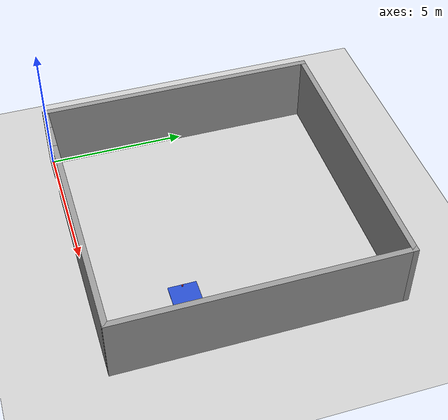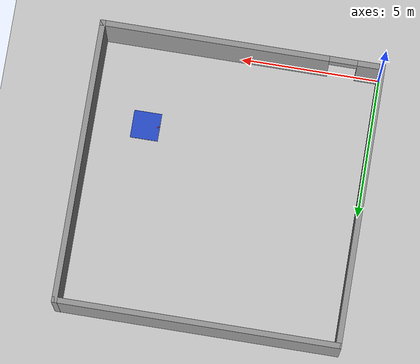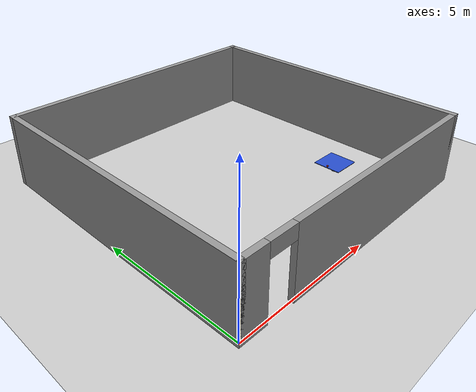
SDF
<sdf version="1.4">
 <world name="default">
  <model name="ground_plane">
   <static>1</static>
   <link name="link">
    <collision name="collision">
     <geometry><plane><normal>0 0 1</normal><size>100 100</size></plane></geometry>
     <surface><friction><ode><mu>100</mu><mu2>50</mu2></ode></friction></surface>
    </collision>
    <visual name="visual">
     <cast_shadows>0</cast_shadows>
     <geometry><plane><normal>0 0 1</normal><size>100 100</size></plane></geometry>
     <material>
      <script><uri>file://media/materials/scripts/gazebo.material</uri><name>Gazebo/Grey</name></script>
     </material>
    </visual>
    <velocity_decay><linear>0</linear><angular>0</angular></velocity_decay>
   </link>
  </model>
  <light name="sun" type="directional">
   <pose>0 0 10 0 -0 0</pose>
   <diffuse>0.8 0.8 0.8 1</diffuse>
   <specular>0.2 0.2 0.2 1</specular>
   <attenuation>
    <range>1000</range>
    <constant>0.9</constant>
    <linear>0.01</linear>
    <quadratic>0.001</quadratic>
   </attenuation>
   <direction>-0.5 0.1 -0.9</direction>
  </light>
  <physics type="ode">
   <max_step_size>0.001</max_step_size>
   <real_time_factor>1</real_time_factor>
   <real_time_update_rate>1000</real_time_update_rate>
   <gravity>0 0 -9.8</gravity>
  </physics>
  <scene><ambient>0.4 0.4 0.4 1</ambient><background>0.7 0.7 0.7 1</background><shadows>1</shadows></scene>
  <spherical_coordinates>
   <surface_model>EARTH_WGS84</surface_model>
   <latitude_deg>0</latitude_deg>
   <longitude_deg>0</longitude_deg>
   <elevation>0</elevation>
   <heading_deg>0</heading_deg>
  </spherical_coordinates>
  <model name="BuildingDefaultName">
   <link name="Wall_0">
    <pose>5 0 0 0 -0 0</pose>
    <visual name="Wall_0_Visual_0">
     <pose>-4.60802 0 1.25 0 -0 0</pose>
     <geometry><box><size>0.983952 0.2 2.5</size></box></geometry>
     <material>
      <script><uri>file://media/materials/scripts/gazebo.material</uri><name>Gazebo/Grey</name></script>
     </material>
    </visual>
    <collision name="Wall_0_Collision_0">
     <geometry><box><size>0.983952 0.2 2.5</size></box></geometry>
     <pose>-4.60802 0 1.25 0 -0 0</pose>
    </collision>
    <visual name="Wall_0_Visual_1">
     <pose>0.991976 0 1.25 0 -0 0</pose>
     <geometry><box><size>8.21605 0.2 2.5</size></box></geometry>
     <material>
      <script><uri>file://media/materials/scripts/gazebo.material</uri><name>Gazebo/Grey</name></script>
     </material>
    </visual>
    <collision name="Wall_0_Collision_1">
     <geometry><box><size>8.21605 0.2 2.5</size></box></geometry>
     <pose>0.991976 0 1.25 0 -0 0</pose>
    </collision>
    <visual name="Wall_0_Visual_2">
     <pose>-3.61605 0 2.25 0 -0 0</pose>
     <geometry><box><size>1 0.2 0.5</size></box></geometry>
     <material>
      <script><uri>file://media/materials/scripts/gazebo.material</uri><name>Gazebo/Grey</name></script>
     </material>
    </visual>
    <collision name="Wall_0_Collision_2">
     <geometry><box><size>1 0.2 0.5</size></box></geometry>
     <pose>-3.61605 0 2.25 0 -0 0</pose>
    </collision>
    <velocity_decay><linear>0</linear><angular>0</angular></velocity_decay>
   </link>
   <link name="Wall_1">
    <collision name="Wall_1_Collision">
     <geometry><box><size>10.2 0.2 2.5</size></box></geometry>
     <pose>0 0 1.25 0 -0 0</pose>
    </collision>
    <visual name="Wall_1_Visual">
     <pose>0 0 1.25 0 -0 0</pose>
     <geometry><box><size>10.2 0.2 2.5</size></box></geometry>
     <material>
      <script><uri>file://media/materials/scripts/gazebo.material</uri><name>Gazebo/Grey</name></script>
     </material>
    </visual>
    <velocity_decay><linear>0</linear><angular>0</angular></velocity_decay>
    <pose>10 5 0 0 -0 1.5708</pose>
   </link>
   <link name="Wall_2">
    <collision name="Wall_2_Collision">
     <geometry><box><size>10.2 0.2 2.5</size></box></geometry>
     <pose>0 0 1.25 0 -0 0</pose>
    </collision>
    <visual name="Wall_2_Visual">
     <pose>0 0 1.25 0 -0 0</pose>
     <geometry><box><size>10.2 0.2 2.5</size></box></geometry>
     <material>
      <script><uri>file://media/materials/scripts/gazebo.material</uri><name>Gazebo/Grey</name></script>
     </material>
    </visual>
    <velocity_decay><linear>0</linear><angular>0</angular></velocity_decay>
    <pose>5 10 0 0 -0 3.14159</pose>
   </link>
   <link name="Wall_3">
    <collision name="Wall_3_Collision">
     <geometry><box><size>10.2 0.2 2.5</size></box></geometry>
     <pose>0 0 1.25 0 -0 0</pose>
    </collision>
    <visual name="Wall_3_Visual">
     <pose>0 0 1.25 0 -0 0</pose>
     <geometry><box><size>10.2 0.2 2.5</size></box></geometry>
     <material>
      <script><uri>file://media/materials/scripts/gazebo.material</uri><name>Gazebo/Grey</name></script>
     </material>
    </visual>
    <velocity_decay><linear>0</linear><angular>0</angular></velocity_decay>
    <pose>0 5 0 0 0 -1.5708</pose>
   </link>
   <static>1</static>
  </model>
  <model name="unit_cylinder_1">
   <pose>8 3 0.15 0 -0 0</pose>
   <link name="link">
    <inertial>
     <mass>1</mass>
     <inertia><ixx>1</ixx><ixy>0</ixy><ixz>0</ixz><iyy>1</iyy><iyz>0</iyz><izz>1</izz></inertia>
    </inertial>
    <collision name="collision">
     <geometry><cylinder><radius>0.1</radius><length>0.3</length></cylinder></geometry>
    </collision>
    <visual name="visual">
     <geometry><cylinder><radius>0.1</radius><length>0.3</length></cylinder></geometry>
     <material>
      <script><uri>file://media/materials/scripts/gazebo.material</uri><name>Gazebo/Grey</name></script>
     </material>
    </visual>
    <velocity_decay><linear>0</linear><angular>0</angular></velocity_decay>
   </link>
   <static>1</static>
  </model>
  <model name="unit_box_1">
   <pose>8 3 0.31 0 -0 0</pose>
   <link name="link">
    <inertial>
     <mass>1</mass>
     <inertia><ixx>1</ixx><ixy>0</ixy><ixz>0</ixz><iyy>1</iyy><iyz>0</iyz><izz>1</izz></inertia>
    </inertial>
    <collision name="collision"><geometry><box><size>1 1 0.02</size></box></geometry></collision>
    <visual name="visual">
     <geometry><box><size>1 1 0.02</size></box></geometry>
     <material>
      <script><uri>file://media/materials/scripts/gazebo.material</uri><name>Gazebo/Blue</name></script>
     </material>
    </visual>
    <velocity_decay><linear>0</linear><angular>0</angular></velocity_decay>
   </link>
   <static>1</static>
  </model>
  <model name="unit_box_1_0">
   <pose>7.56 3 0.34 0 0 0</pose>
   <link name="link">
    <inertial>
     <mass>0.01</mass>
     <inertia><ixx>0.01</ixx><ixy>0</ixy><ixz>0</ixz><iyy>0.01</iyy><iyz>0</iyz><izz>0.01</izz></inertia>
    </inertial>
    <collision name="collision"><geometry><box><size>0.05 0.05 0.05</size></box></geometry></collision>
    <visual name="visual">
     <geometry><box><size>0.05 0.05 0.05</size></box></geometry>
     <material>
      <script><uri>file://media/materials/scripts/gazebo.material</uri><name>Gazebo/Red</name></script>
     </material>
    </visual>
    <velocity_decay><linear>0</linear><angular>0</angular></velocity_decay>
   </link>
   <static>0</static>
  </model>
 </world>
</sdf>
